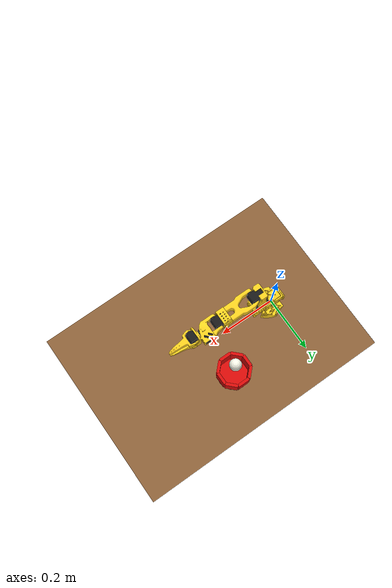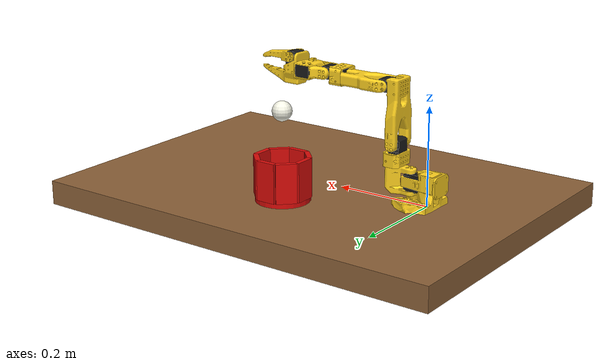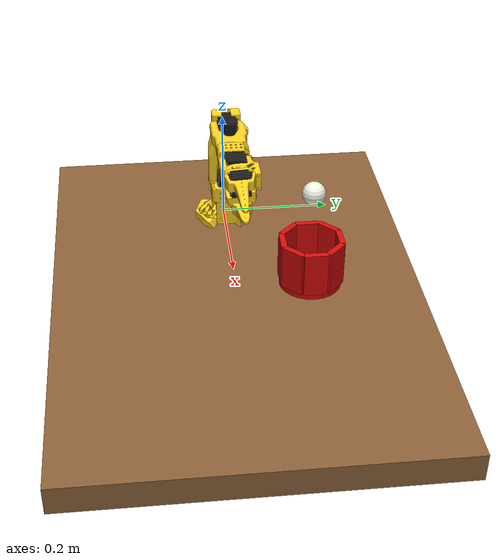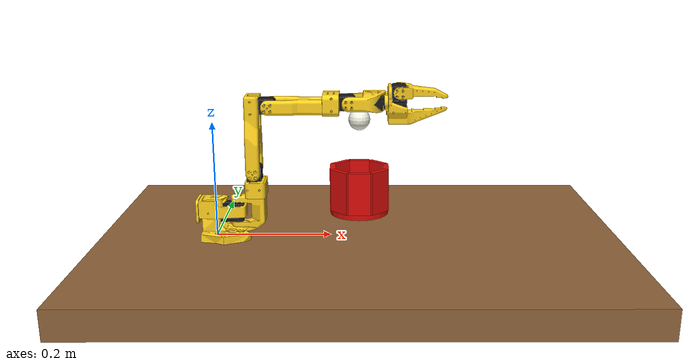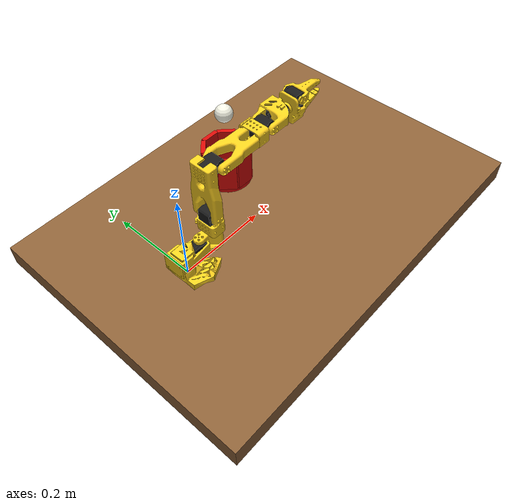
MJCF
<mujoco model="scene">
    <include file="so101_new_calib.xml" />

    <visual>
        <headlight diffuse="0.6 0.6 0.6" ambient="0.3 0.3 0.3" specular="0 0 0" />
        <rgba haze="0.15 0.25 0.35 1" />
        <global azimuth="160" elevation="-20" />
    </visual>

    <asset>
        <texture type="skybox" builtin="gradient" rgb1="0.3 0.5 0.7" rgb2="0 0 0" width="512"
            height="3072" />
        <texture type="2d" name="groundplane" builtin="checker" mark="edge" rgb1="0.2 0.3 0.4"
            rgb2="0.1 0.2 0.3"
            markrgb="0.8 0.8 0.8" width="300" height="300" />
        <material name="groundplane" texture="groundplane" texuniform="true" texrepeat="5 5"
            reflectance="0.2" />
    </asset>

    <worldbody>
        <light pos="0 0 3.5" dir="0 0 -1" directional="true" />
        <!-- Table: top surface is z=0 -->
        <geom name="table_top" type="box"
            pos="0.25 0 -0.025" size="0.45 0.32 0.025"
            rgba="0.55 0.38 0.22 1" friction="1.0 0.01 0.05" condim="6"/>

        <!-- Camera aims at the work area -->
        <body name="camera_target" pos="0.25 0 0.04"/>
        <camera name="front" mode="targetbody" target="camera_target"
                pos="0.62 -0.72 0.58" fovy="55"/>

        <!-- Red cup: open-top, octagonal approximation -->
        <body name="cup" pos="0.25 0.13 0" mocap="true">
        <geom name="cup_bottom" type="cylinder"
                pos="0 0 0.005" size="0.055 0.005"
                rgba="0.85 0.04 0.03 1" friction="1.0 0.01 0.05" condim="6"/>
        <geom name="cup_wall_0" type="box" pos=" 0.0500  0.0000 0.050" euler="0 0 0.0000" size="0.005 0.0205 0.040" rgba="0.85 0.04 0.03 1"/>
        <geom name="cup_wall_1" type="box" pos=" 0.0354  0.0354 0.050" euler="0 0 0.7854" size="0.005 0.0205 0.040" rgba="0.85 0.04 0.03 1"/>
        <geom name="cup_wall_2" type="box" pos=" 0.0000  0.0500 0.050" euler="0 0 1.5708" size="0.005 0.0205 0.040" rgba="0.85 0.04 0.03 1"/>
        <geom name="cup_wall_3" type="box" pos="-0.0354  0.0354 0.050" euler="0 0 2.3562" size="0.005 0.0205 0.040" rgba="0.85 0.04 0.03 1"/>
        <geom name="cup_wall_4" type="box" pos="-0.0500  0.0000 0.050" euler="0 0 3.1416" size="0.005 0.0205 0.040" rgba="0.85 0.04 0.03 1"/>
        <geom name="cup_wall_5" type="box" pos="-0.0354 -0.0354 0.050" euler="0 0 3.9270" size="0.005 0.0205 0.040" rgba="0.85 0.04 0.03 1"/>
        <geom name="cup_wall_6" type="box" pos=" 0.0000 -0.0500 0.050" euler="0 0 4.7124" size="0.005 0.0205 0.040" rgba="0.85 0.04 0.03 1"/>
        <geom name="cup_wall_7" type="box" pos=" 0.0354 -0.0354 0.050" euler="0 0 5.4978" size="0.005 0.0205 0.040" rgba="0.85 0.04 0.03 1"/>

        </body>

        <!-- Size variants are separate precompiled mocap bodies. The
             inactive cup is parked outside the task workspace. -->
        <body name="cup_s090" pos="10 10 0" mocap="true">
        <geom name="cup_bottom_s090" type="cylinder" pos="0 0 0.0045" size="0.0495 0.0045" rgba="0.85 0.04 0.03 0"/>
        <geom name="cup_wall_s090_0" type="box" pos=" 0.0450  0.0000 0.0450" euler="0 0 0.0000" size="0.0045 0.01845 0.0360" rgba="0.85 0.04 0.03 0"/>
        <geom name="cup_wall_s090_1" type="box" pos=" 0.0318  0.0318 0.0450" euler="0 0 0.7854" size="0.0045 0.01845 0.0360" rgba="0.85 0.04 0.03 0"/>
        <geom name="cup_wall_s090_2" type="box" pos=" 0.0000  0.0450 0.0450" euler="0 0 1.5708" size="0.0045 0.01845 0.0360" rgba="0.85 0.04 0.03 0"/>
        <geom name="cup_wall_s090_3" type="box" pos="-0.0318  0.0318 0.0450" euler="0 0 2.3562" size="0.0045 0.01845 0.0360" rgba="0.85 0.04 0.03 0"/>
        <geom name="cup_wall_s090_4" type="box" pos="-0.0450  0.0000 0.0450" euler="0 0 3.1416" size="0.0045 0.01845 0.0360" rgba="0.85 0.04 0.03 0"/>
        <geom name="cup_wall_s090_5" type="box" pos="-0.0318 -0.0318 0.0450" euler="0 0 3.9270" size="0.0045 0.01845 0.0360" rgba="0.85 0.04 0.03 0"/>
        <geom name="cup_wall_s090_6" type="box" pos=" 0.0000 -0.0450 0.0450" euler="0 0 4.7124" size="0.0045 0.01845 0.0360" rgba="0.85 0.04 0.03 0"/>
        <geom name="cup_wall_s090_7" type="box" pos=" 0.0318 -0.0318 0.0450" euler="0 0 5.4978" size="0.0045 0.01845 0.0360" rgba="0.85 0.04 0.03 0"/>
        </body>

        <body name="cup_s110" pos="12 10 0" mocap="true">
        <geom name="cup_bottom_s110" type="cylinder" pos="0 0 0.0055" size="0.0605 0.0055" rgba="0.85 0.04 0.03 0"/>
        <geom name="cup_wall_s110_0" type="box" pos=" 0.0550  0.0000 0.0550" euler="0 0 0.0000" size="0.0055 0.02255 0.0440" rgba="0.85 0.04 0.03 0"/>
        <geom name="cup_wall_s110_1" type="box" pos=" 0.0389  0.0389 0.0550" euler="0 0 0.7854" size="0.0055 0.02255 0.0440" rgba="0.85 0.04 0.03 0"/>
        <geom name="cup_wall_s110_2" type="box" pos=" 0.0000  0.0550 0.0550" euler="0 0 1.5708" size="0.0055 0.02255 0.0440" rgba="0.85 0.04 0.03 0"/>
        <geom name="cup_wall_s110_3" type="box" pos="-0.0389  0.0389 0.0550" euler="0 0 2.3562" size="0.0055 0.02255 0.0440" rgba="0.85 0.04 0.03 0"/>
        <geom name="cup_wall_s110_4" type="box" pos="-0.0550  0.0000 0.0550" euler="0 0 3.1416" size="0.0055 0.02255 0.0440" rgba="0.85 0.04 0.03 0"/>
        <geom name="cup_wall_s110_5" type="box" pos="-0.0389 -0.0389 0.0550" euler="0 0 3.9270" size="0.0055 0.02255 0.0440" rgba="0.85 0.04 0.03 0"/>
        <geom name="cup_wall_s110_6" type="box" pos=" 0.0000 -0.0550 0.0550" euler="0 0 4.7124" size="0.0055 0.02255 0.0440" rgba="0.85 0.04 0.03 0"/>
        <geom name="cup_wall_s110_7" type="box" pos=" 0.0389 -0.0389 0.0550" euler="0 0 5.4978" size="0.0055 0.02255 0.0440" rgba="0.85 0.04 0.03 0"/>
        </body>

        <!-- Ping-pong ball; smoke test will drop it into the cup -->
        <body name="ball" pos="0.25 0.13 0.18">
        <inertial pos="0 0 0" mass="0.0027" diaginertia="0.000000432 0.000000432 0.000000432"/>
        <freejoint name="ball_free"/>
        <geom name="ball_geom" type="sphere" size="0.020" mass="0"
                rgba="0.96 0.96 0.90 1" friction="0.8 0.01 0.05" condim="6"/>
        </body>

        <body name="ball_s0195" pos="10 10 10">
        <inertial pos="0 0 0" mass="0.0027" diaginertia="0.00000041067 0.00000041067 0.00000041067"/>
        <freejoint name="ball_s0195_free"/>
        <geom name="ball_geom_s0195" type="sphere" size="0.0195" mass="0"
                rgba="0.96 0.96 0.90 0" friction="0.8 0.01 0.05" condim="6"/>
        </body>

        <body name="ball_s0205" pos="12 10 10">
        <inertial pos="0 0 0" mass="0.0027" diaginertia="0.00000045387 0.00000045387 0.00000045387"/>
        <freejoint name="ball_s0205_free"/>
        <geom name="ball_geom_s0205" type="sphere" size="0.0205" mass="0"
                rgba="0.96 0.96 0.90 0" friction="0.8 0.01 0.05" condim="6"/>
        </body>
    </worldbody>
    <equality>
        <weld name="ball_s0195_parked" body1="ball_s0195" active="true"/>
        <weld name="ball_s0205_parked" body1="ball_s0205" active="true"/>
    </equality>
</mujoco>

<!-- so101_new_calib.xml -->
<!-- Generated using onshape-to-robot -->
<!-- Onshape https://cad.onshape.com/documents/7715cc284bb430fe6dab4ffd/w/4fd0791b683777b02f8d975a/e/826c553ede3b7592eb9ca800 -->
<mujoco model="so101_new_calib">
  <compiler angle="radian" meshdir="assets" autolimits="true"/>
  <default>
    <default class="so101_new_calib">
      <joint damping="1" frictionloss="0.1" armature="0.005"/>
      <position kp="50"/>
      <default class="visual">
        <geom type="mesh" contype="0" conaffinity="0" group="2"/>
      </default>
      <default class="collision">
        <geom group="3"/>
      </default>
    </default>
  </default>
  <!-- Additional joints_properties.xml -->
  <default>
    <default class="sts3215">
      <geom contype="0" conaffinity="0"/>
      <joint damping="0.60" frictionloss="0.052" armature="0.028"/>
      <position kp="998.22" kv="2.731" forcerange="-2.94 2.94"/>
    </default>
    <default class="backlash">
      <!-- +/- 0.5° of backlash -->
      <joint damping="0.01" frictionloss="0" armature="0.01" limited="true" range="-0.008726646259971648 0.008726646259971648"/>
    </default>
  </default>
  <worldbody>
    <!-- Link base -->
    <body name="base" pos="0 0 0" quat="1 0 0 0" childclass="so101_new_calib">
      <inertial pos="0.0137179 -5.19711e-05 0.0334843" mass="0.147" fullinertia="0.000114686 0.000136117 0.000130364 -4.59787e-07 4.97151e-06 9.75275e-08"/>
      <!-- Part base_motor_holder_so101_v1 -->
      <geom type="mesh" class="visual" pos="-0.00636471 -9.94414e-05 -0.0024" quat="0.5 0.5 0.5 0.5" mesh="base_motor_holder_so101_v1" material="base_motor_holder_so101_v1_material"/>
      <!-- Part base_so101_v2 -->
      <geom type="mesh" class="visual" pos="-0.00636471 -8.97657e-09 -0.0024" quat="0.5 0.5 0.5 0.5" mesh="base_so101_v2" material="base_so101_v2_material"/>
      <!-- Part sts3215_03a_v1 -->
      <geom type="mesh" class="visual" pos="0.0263353 -8.97657e-09 0.0437" quat="1 -2.85511e-16 -9.64433e-17 6.12908e-16" mesh="sts3215_03a_v1" material="sts3215_03a_v1_material"/>
      <!-- Part waveshare_mounting_plate_so101_v2 -->
      <geom type="mesh" class="visual" pos="-0.0309827 -0.000199441 0.0474" quat="0.5 0.5 0.5 0.5" mesh="waveshare_mounting_plate_so101_v2" material="waveshare_mounting_plate_so101_v2_material"/>
      <!-- Frame baseframe -->
      <site group="3" name="baseframe" pos="8.67362e-19 9.55596e-18 3.46945e-18" quat="1 -8.17396e-19 3.78392e-17 2.22045e-16"/>
      <!-- Link shoulder -->
      <body name="shoulder" pos="0.0388353 -8.97657e-09 0.0624" quat="3.56167e-16 1.22818e-15 -1 -4.14635e-16">
        <!-- Joint from base to shoulder -->
        <joint axis="0 0 1" name="shoulder_pan" type="hinge" range="-1.9198621771937616 1.9198621771937634" class="sts3215"/>
        <inertial pos="-0.0307604 -1.66727e-05 -0.0252713" mass="0.100006" fullinertia="8.3759e-05 8.10403e-05 2.39783e-05 7.55525e-08 -1.16342e-06 1.54663e-07"/>
        <!-- Part sts3215_03a_v1_2 -->
        <geom type="mesh" class="visual" pos="-0.0303992 0.000422241 -0.0417" quat="0.5 0.5 0.5 -0.5" mesh="sts3215_03a_v1" material="sts3215_03a_v1_material"/>
        <geom type="mesh" class="collision" pos="-0.0303992 0.000422241 -0.0417" quat="0.5 0.5 0.5 -0.5" mesh="sts3215_03a_v1" material="sts3215_03a_v1_material"/>
        <!-- Part motor_holder_so101_base_v1 -->
        <geom type="mesh" class="visual" pos="-0.0675992 -0.000177759 0.0158499" quat="0.5 0.5 -0.5 0.5" mesh="motor_holder_so101_base_v1" material="motor_holder_so101_base_v1_material"/>
        <geom type="mesh" class="collision" pos="-0.0675992 -0.000177759 0.0158499" quat="0.5 0.5 -0.5 0.5" mesh="motor_holder_so101_base_v1" material="motor_holder_so101_base_v1_material"/>
        <!-- Part rotation_pitch_so101_v1 -->
        <geom type="mesh" class="visual" pos="0.0122008 2.22413e-05 0.0464" quat="0.707107 -0.707107 -0 8.3163e-34" mesh="rotation_pitch_so101_v1" material="rotation_pitch_so101_v1_material"/>
        <geom type="mesh" class="collision" pos="0.0122008 2.22413e-05 0.0464" quat="0.707107 -0.707107 -0 8.3163e-34" mesh="rotation_pitch_so101_v1" material="rotation_pitch_so101_v1_material"/>
        <!-- Link upper_arm -->
        <body name="upper_arm" pos="-0.0303992 -0.0182778 -0.0542" quat="0.5 -0.5 -0.5 -0.5">
          <!-- Joint from shoulder to upper_arm -->
          <joint axis="0 0 1" name="shoulder_lift" type="hinge" range="-1.7453292519943224 1.7453292519943366" class="sts3215"/>
          <inertial pos="-0.0898471 -0.00838224 0.0184089" mass="0.103" fullinertia="4.08002e-05 0.000147318 0.000142487 -1.97819e-05 -4.03016e-08 8.97326e-09"/>
          <!-- Part sts3215_03a_v1_3 -->
          <geom type="mesh" class="visual" pos="-0.11257 -0.0155 0.0187" quat="4.56308e-16 -0.707107 0.707107 -1.37383e-16" mesh="sts3215_03a_v1" material="sts3215_03a_v1_material"/>
          <geom type="mesh" class="collision" pos="-0.11257 -0.0155 0.0187" quat="4.56308e-16 -0.707107 0.707107 -1.37383e-16" mesh="sts3215_03a_v1" material="sts3215_03a_v1_material"/>
          <!-- Part upper_arm_so101_v1 -->
          <geom type="mesh" class="visual" pos="-0.065085 0.012 0.0182" quat="0 1 0 0" mesh="upper_arm_so101_v1" material="upper_arm_so101_v1_material"/>
          <geom type="mesh" class="collision" pos="-0.065085 0.012 0.0182" quat="0 1 0 0" mesh="upper_arm_so101_v1" material="upper_arm_so101_v1_material"/>
          <!-- Link lower_arm -->
          <body name="lower_arm" pos="-0.11257 -0.028 1.73763e-16" quat="0.707107 -5.98613e-17 -2.58051e-17 0.707107">
            <!-- Joint from upper_arm to lower_arm -->
            <!-- Note: 5-degree calibration offset applied to joint range -->
            <joint axis="0 0 1" name="elbow_flex" type="hinge" range="-1.69 1.69" class="sts3215"/>
            <inertial pos="-0.0980701 0.00324376 0.0182831" mass="0.104" fullinertia="2.87438e-05 0.000159844 0.00014529 7.41152e-06 1.26409e-06 -4.90188e-08"/>
            <!-- Part under_arm_so101_v1 -->
            <geom type="mesh" class="visual" pos="-0.0648499 -0.032 0.0182" quat="0 1 0 0" mesh="under_arm_so101_v1" material="under_arm_so101_v1_material"/>
            <geom type="mesh" class="collision" pos="-0.0648499 -0.032 0.0182" quat="0 1 0 0" mesh="under_arm_so101_v1" material="under_arm_so101_v1_material"/>
            <!-- Part motor_holder_so101_wrist_v1 -->
            <geom type="mesh" class="visual" pos="-0.0648499 -0.032 0.018" quat="3.92687e-16 -1 -1.9186e-15 -6.38378e-16" mesh="motor_holder_so101_wrist_v1" material="motor_holder_so101_wrist_v1_material"/>
            <geom type="mesh" class="collision" pos="-0.0648499 -0.032 0.018" quat="3.92687e-16 -1 -1.9186e-15 -6.38378e-16" mesh="motor_holder_so101_wrist_v1" material="motor_holder_so101_wrist_v1_material"/>
            <!-- Part sts3215_03a_v1_4 -->
            <geom type="mesh" class="visual" pos="-0.1224 0.0052 0.0187" quat="7.21645e-16 1.56949e-15 1 -3.33067e-16" mesh="sts3215_03a_v1" material="sts3215_03a_v1_material"/>
            <geom type="mesh" class="collision" pos="-0.1224 0.0052 0.0187" quat="7.21645e-16 1.56949e-15 1 -3.33067e-16" mesh="sts3215_03a_v1" material="sts3215_03a_v1_material"/>
            <!-- Link wrist -->
            <body name="wrist" pos="-0.1349 0.0052 3.62355e-17" quat="0.707107 9.58722e-16 -7.51313e-16 -0.707107">
              <!-- Joint from lower_arm to wrist -->
              <joint axis="0 0 1" name="wrist_flex" type="hinge" range="-1.6580628494556928 1.6580627293335335" class="sts3215"/>
              <inertial pos="-0.000103312 -0.0386143 0.0281156" mass="0.079" fullinertia="3.68263e-05 2.5391e-05 2.1e-05 1.7893e-08 -5.28128e-08 3.6412e-06"/>
              <!-- Part sts3215_03a_no_horn_v1 -->
              <geom type="mesh" class="visual" pos="8.32667e-17 -0.0424 0.0306" quat="0.5 0.5 0.5 -0.5" mesh="sts3215_03a_no_horn_v1" material="sts3215_03a_no_horn_v1_material"/>
              <geom type="mesh" class="collision" pos="8.32667e-17 -0.0424 0.0306" quat="0.5 0.5 0.5 -0.5" mesh="sts3215_03a_no_horn_v1" material="sts3215_03a_no_horn_v1_material"/>
              <!-- Part wrist_roll_pitch_so101_v2 -->
              <geom type="mesh" class="visual" pos="0 -0.028 0.0181" quat="0.5 -0.5 -0.5 -0.5" mesh="wrist_roll_pitch_so101_v2" material="wrist_roll_pitch_so101_v2_material"/>
              <geom type="mesh" class="collision" pos="0 -0.028 0.0181" quat="0.5 -0.5 -0.5 -0.5" mesh="wrist_roll_pitch_so101_v2" material="wrist_roll_pitch_so101_v2_material"/>
              <!-- Link gripper -->
              <body name="gripper" pos="5.55112e-17 -0.0611 0.0181" quat="0.0172091 -0.0172091 0.706897 0.706897">
                <!-- Joint from wrist to gripper -->
                <joint axis="0 0 1" name="wrist_roll" type="hinge" range="-2.7438472969992493 2.841206309382605" class="sts3215"/>
                <inertial pos="0.000213627 0.000245138 -0.025187" mass="0.087" fullinertia="2.75087e-05 4.33657e-05 3.45059e-05 -3.35241e-07 -5.7352e-06 -5.17847e-08"/>
                <!-- Part sts3215_03a_v1_5 -->
                <geom type="mesh" class="visual" pos="0.0077 0.0001 -0.0234" quat="0.707107 -0.707107 1.66015e-15 6.45094e-15" mesh="sts3215_03a_v1" material="sts3215_03a_v1_material"/>
                <geom type="mesh" class="collision" pos="0.0077 0.0001 -0.0234" quat="0.707107 -0.707107 1.66015e-15 6.45094e-15" mesh="sts3215_03a_v1" material="sts3215_03a_v1_material"/>
                <!-- Part wrist_roll_follower_so101_v1 -->
                <geom type="mesh" class="visual" pos="8.32667e-17 -0.000218214 0.000949706" quat="0 1 0 0" mesh="wrist_roll_follower_so101_v1" material="wrist_roll_follower_so101_v1_material"/>
                    <geom name="fixed_finger_collision" type="mesh" class="collision" pos="8.32667e-17 -0.000218214 0.000949706" quat="0 1 0 0" mesh="fixed_finger_tip_collision" friction="1.5 0.01 0.05" condim="6" contype="1" conaffinity="1" solref="0.0005 1" solimp="0.999 0.9999 0.001 0.5 2"/>
                <!-- Frame gripperframe -->
                <site group="3" name="gripperframe" pos="-0.0079 -0.000218121 -0.0981274" quat="0.707107 -0 0.707107 -2.37788e-17"/>
                <!-- Link moving_jaw_so101_v1 -->
                <body name="moving_jaw_so101_v1" pos="0.0202 0.0188 -0.0234" quat="0.707107 0.707107 -1.85362e-08 1.85362e-08">
                  <!-- Joint from gripper to moving_jaw_so101_v1 -->
                  <joint axis="0 0 1" name="gripper" type="hinge" range="-0.17453297762778586 1.7453291995659765" class="sts3215"/>
                  <inertial pos="-0.00157495 -0.0300244 0.0192755" mass="0.012" fullinertia="6.61427e-06 1.89032e-06 5.28738e-06 -3.19807e-07 -5.90717e-09 -1.09945e-07"/>
                  <!-- Part moving_jaw_so101_v1 -->
                  <geom type="mesh" class="visual" pos="-5.55112e-17 -5.55112e-17 0.0189" quat="1 -0 3.00524e-16 -2.00834e-17" mesh="moving_jaw_so101_v1" material="moving_jaw_so101_v1_material"/>
                  <!-- Contact geometry is the actual moving-finger CAD tip. -->
                  <geom name="moving_finger_collision" type="mesh" class="collision" pos="-5.55112e-17 -5.55112e-17 0.0189" quat="1 0 3.00524e-16 -2.00834e-17" mesh="moving_finger_tip_collision" friction="1.5 0.01 0.05" condim="6" contype="1" conaffinity="1" solref="0.0005 1" solimp="0.999 0.9999 0.001 0.5 2"/>
                </body>
              </body>
            </body>
          </body>
        </body>
      </body>
    </body>
  </worldbody>
  <asset>
    <mesh name="fixed_finger_tip_collision" file="fixed_finger_tip_collision.stl"/>
    <mesh name="moving_finger_tip_collision" file="moving_finger_tip_collision.stl"/>
    <mesh file="waveshare_mounting_plate_so101_v2.stl"/>
    <mesh file="sts3215_03a_v1.stl"/>
    <mesh file="motor_holder_so101_base_v1.stl"/>
    <mesh file="wrist_roll_follower_so101_v1.stl"/>
    <mesh file="moving_jaw_so101_v1.stl"/>
    <mesh file="base_motor_holder_so101_v1.stl"/>
    <mesh file="upper_arm_so101_v1.stl"/>
    <mesh file="wrist_roll_pitch_so101_v2.stl"/>
    <mesh file="under_arm_so101_v1.stl"/>
    <mesh file="rotation_pitch_so101_v1.stl"/>
    <mesh file="motor_holder_so101_wrist_v1.stl"/>
    <mesh file="sts3215_03a_no_horn_v1.stl"/>
    <mesh file="base_so101_v2.stl"/>
    <material name="base_motor_holder_so101_v1_material" rgba="1 0.82 0.12 1"/>
    <material name="base_so101_v2_material" rgba="1 0.82 0.12 1"/>
    <material name="sts3215_03a_v1_material" rgba="0.1 0.1 0.1 1"/>
    <material name="waveshare_mounting_plate_so101_v2_material" rgba="1 0.82 0.12 1"/>
    <material name="motor_holder_so101_base_v1_material" rgba="1 0.82 0.12 1"/>
    <material name="rotation_pitch_so101_v1_material" rgba="1 0.82 0.12 1"/>
    <material name="upper_arm_so101_v1_material" rgba="1 0.82 0.12 1"/>
    <material name="under_arm_so101_v1_material" rgba="1 0.82 0.12 1"/>
    <material name="motor_holder_so101_wrist_v1_material" rgba="1 0.82 0.12 1"/>
    <material name="sts3215_03a_no_horn_v1_material" rgba="0.1 0.1 0.1 1.0"/>
    <material name="wrist_roll_pitch_so101_v2_material" rgba="1 0.82 0.12 1"/>
    <material name="wrist_roll_follower_so101_v1_material" rgba="1 0.82 0.12 1"/>
    <material name="moving_jaw_so101_v1_material" rgba="1 0.82 0.12 1"/>
  </asset>
  <actuator>
    <position class="sts3215" name="shoulder_pan" joint="shoulder_pan" forcerange="-3.35 3.35" ctrlrange="-1.91986 1.91986"/>
    <position class="sts3215" name="shoulder_lift" joint="shoulder_lift" forcerange="-3.35 3.35" ctrlrange="-1.74533 1.74533"/>
    <position class="sts3215" name="elbow_flex" joint="elbow_flex" forcerange="-3.35 3.35" ctrlrange="-1.69 1.69"/>
    <position class="sts3215" name="wrist_flex" joint="wrist_flex" forcerange="-3.35 3.35" ctrlrange="-1.65806 1.65806"/>
    <position class="sts3215" name="wrist_roll" joint="wrist_roll" forcerange="-3.35 3.35" ctrlrange="-2.74385 2.84121"/>
    <position class="sts3215" name="gripper" joint="gripper" forcerange="-3.35 3.35" ctrlrange="-0.17453 1.74533"/>
  </actuator>
  <equality/>
</mujoco>
